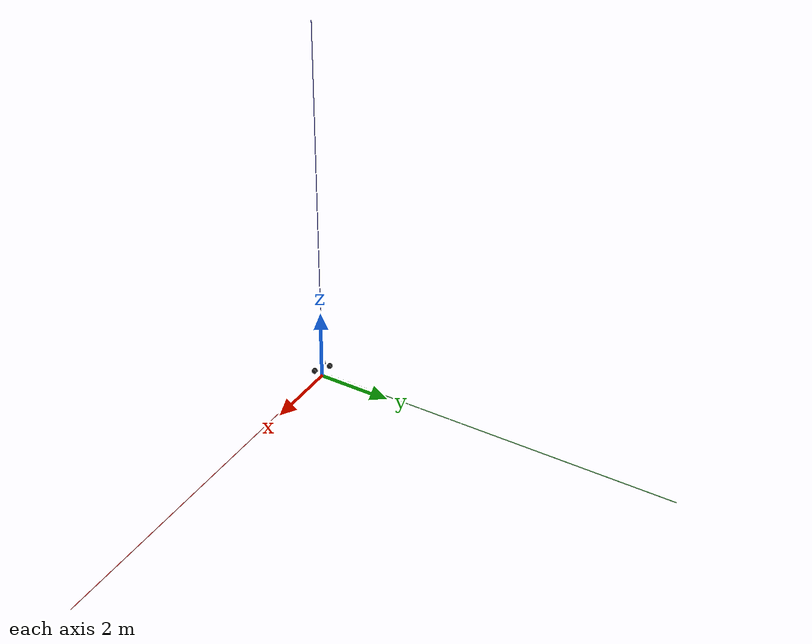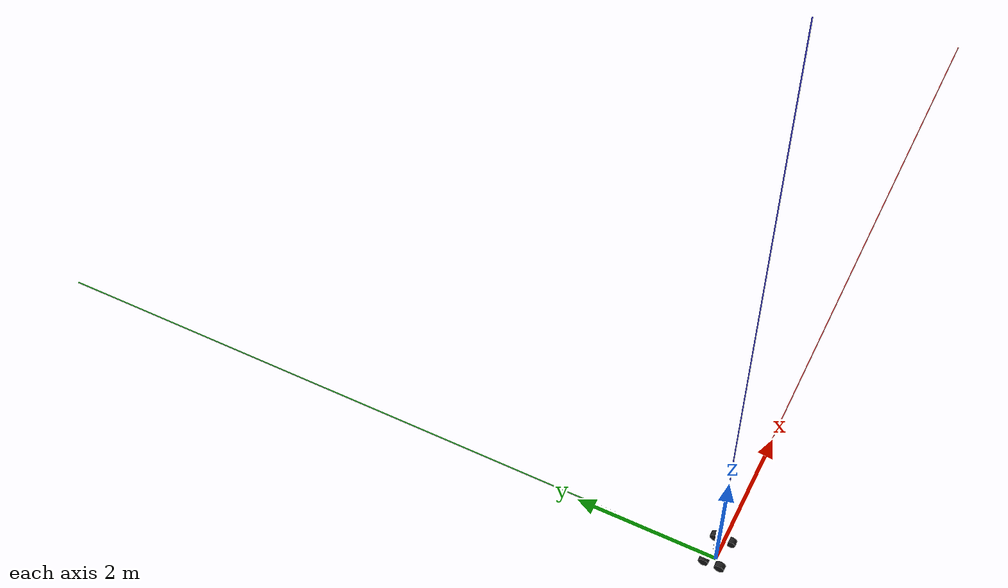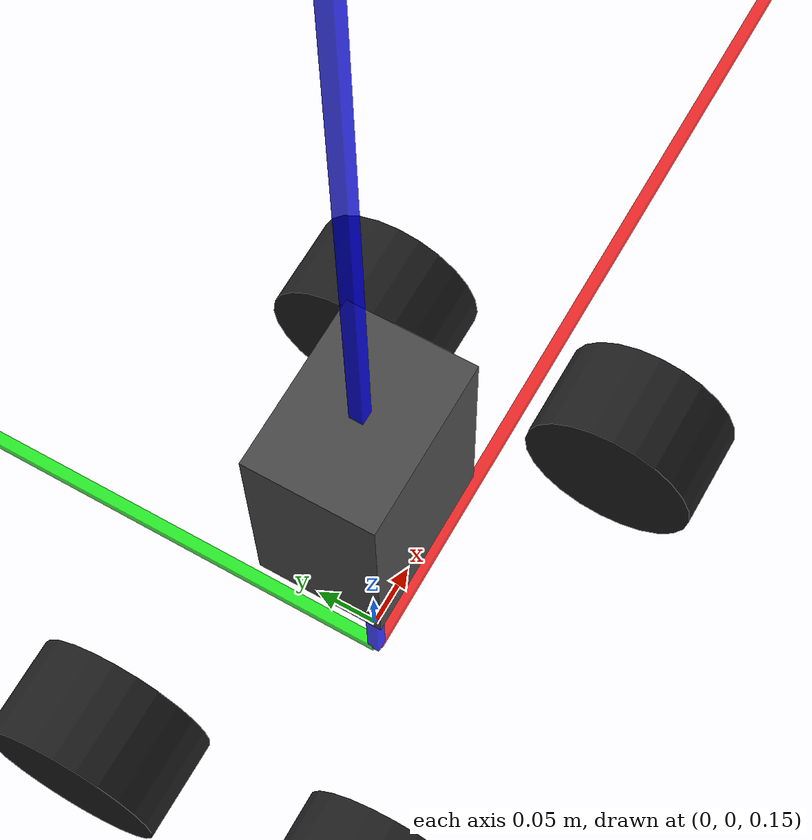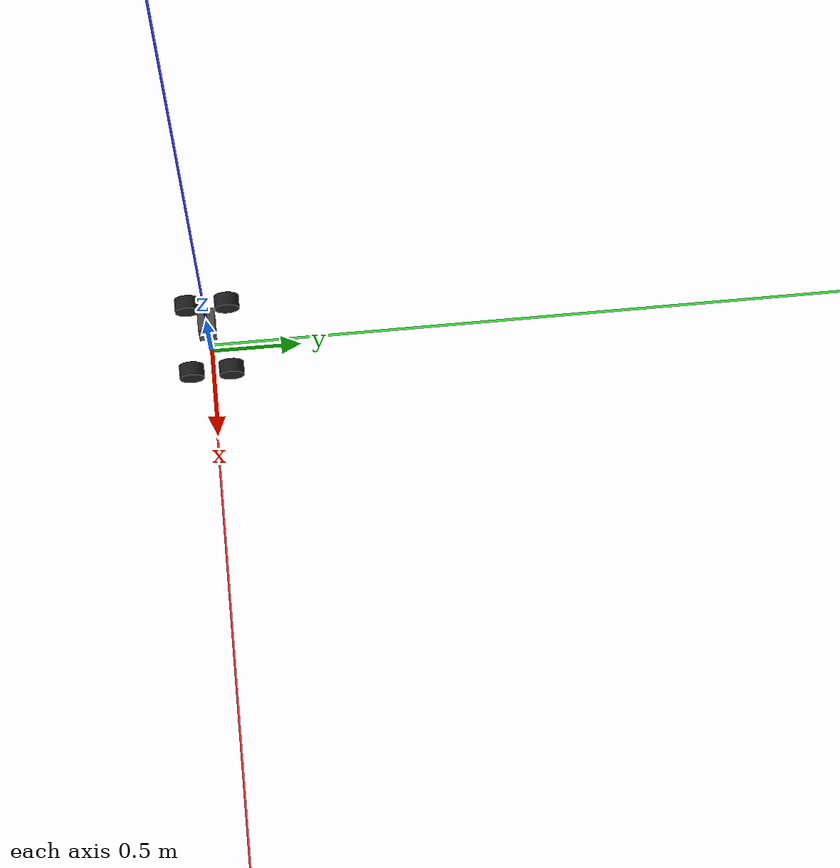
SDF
<sdf version="1.9">
 <world name="iris_runway">
  <physics name="1ms" type="ignore">
   <max_step_size>0.001</max_step_size>
   <real_time_factor>1.0</real_time_factor>
  </physics>
  <plugin filename="gz-sim-physics-system" name="gz::sim::systems::Physics"/>
  <plugin filename="gz-sim-sensors-system" name="gz::sim::systems::Sensors">
   <render_engine>ogre2</render_engine>
  </plugin>
  <plugin filename="gz-sim-user-commands-system" name="gz::sim::systems::UserCommands"/>
  <plugin filename="gz-sim-scene-broadcaster-system" name="gz::sim::systems::SceneBroadcaster"/>
  <plugin filename="gz-sim-imu-system" name="gz::sim::systems::Imu"/>
  <plugin filename="gz-sim-navsat-system" name="gz::sim::systems::NavSat"/>
  <scene><ambient>1.0 1.0 1.0</ambient><background>0.8 0.8 0.8</background></scene>
  <spherical_coordinates>
   <latitude_deg>-35.363262</latitude_deg>
   <longitude_deg>149.165237</longitude_deg>
   <elevation>584</elevation>
   <heading_deg>0</heading_deg>
   <surface_model>EARTH_WGS84</surface_model>
  </spherical_coordinates>
  <light type="directional" name="sun">
   <pose>0 0 10 0 0 0</pose>
   <diffuse>0.8 0.8 0.8 1</diffuse>
   <specular>0.8 0.8 0.8 1</specular>
   <attenuation>
    <range>1000</range>
    <constant>0.9</constant>
    <linear>0.01</linear>
    <quadratic>0.001</quadratic>
   </attenuation>
   <direction>-0.5 0.1 -0.9</direction>
  </light>
  <model name="axes">
   <static>1</static>
   <link name="link">
    <visual name="r">
     <cast_shadows>0</cast_shadows>
     <pose>5 0 0.1 0 0 0</pose>
     <geometry><box><size>10 0.01 0.01</size></box></geometry>
     <material>
      <ambient>1 0 0 0.8</ambient>
      <diffuse>1 0 0 0.8</diffuse>
      <emissive>1 0 0 0.8</emissive>
      <specular>0.5 0.5 0.5 0.8</specular>
     </material>
    </visual>
    <visual name="g">
     <cast_shadows>0</cast_shadows>
     <pose>0 5 0.1 0 0 0</pose>
     <geometry><box><size>0.01 10 0.01</size></box></geometry>
     <material>
      <ambient>0 1 0 0.8</ambient>
      <diffuse>0 1 0 0.8</diffuse>
      <emissive>0 1 0 0.8</emissive>
      <specular>0.5 0.5 0.5 0.8</specular>
     </material>
    </visual>
    <visual name="b">
     <cast_shadows>0</cast_shadows>
     <pose>0 0 5.1 0 0 0</pose>
     <geometry><box><size>0.01 0.01 10</size></box></geometry>
     <material>
      <ambient>0 0 1 0.8</ambient>
      <diffuse>0 0 1 0.8</diffuse>
      <emissive>0 0 1 0.8</emissive>
      <specular>0.5 0.5 0.5 0.8</specular>
     </material>
    </visual>
    <sensor name="navsat_sensor" type="navsat"><always_on>1</always_on><update_rate>1</update_rate></sensor>
   </link>
  </model>
  <include><uri>model://gress_rover</uri><pose degrees="true">0 0 0.195 0 0 90</pose></include>
 </world>
</sdf>

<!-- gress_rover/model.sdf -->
<sdf version="1.9">
  <model name="gress_rover">

    <!--   BASE LINK    -->

    <link name='base_link'>
      <pose>0 0 0 0 0 0</pose>
      <inertial>
        <pose>0 0 0 0 0 0</pose>
        <mass>3.12</mass>
        <inertia>
            <ixx>0.033764</ixx>
            <ixy>0.0</ixy>
            <ixz>0.0</ixz>
            <iyy>0.050325</iyy>
            <iyz>0.0</iyz>
            <izz>0.020275</izz>
        </inertia>
      </inertial>

      <collision name='odom_fixed_joint_lump__base_link_collision'>
        <pose>0 0 0.25 0 -0 0</pose>
        <geometry>
          <box>
            <size>0.093 0.126 0.17</size>
          </box>
        </geometry>
      </collision>

      <visual name='odom_fixed_joint_lump__base_link_visual'>
        <pose>0 0 0.25 0 -0 0</pose>
        <geometry>
          <box>
            <size>0.093 0.126 0.17</size>
          </box>
        </geometry>
        <material>
          <script>
            <name>Gazebo/DarkGrey</name>
            <uri>file://media/materials/scripts/gazebo.material</uri>
          </script>
          <diffuse>1 1 1 1</diffuse>
          <specular>1 1 1 1</specular>
        </material>
      </visual>

      <!--   SENSOR    -->

      <sensor name="imu_sensor" type="imu">
        <pose degrees="true">0 0 0 0 180 0</pose>
        <always_on>1</always_on>
        <update_rate>1000</update_rate>
        <visualize>true</visualize>
      </sensor>

    </link>

      <link name='lf_wheel_link'>
      <pose>0.11 0.195 0.0392 0 -0 0</pose>
      <inertial>
        <pose>0 0 0 1.57079632679 0 0</pose>
        <mass>0.670</mass>
        <inertia>
          <ixx>0.00287</ixx>
          <ixy>0</ixy>
          <ixz>0</ixz>
          <iyy>0.001797</iyy>
          <iyz>0</iyz>
          <izz>0.001797</izz>
        </inertia>
      </inertial>

      <collision name='lf_wheel_link_collision'>
        <pose>0 0 0 1.57079632679 0 0</pose>
        <geometry>
          <cylinder>
            <radius>0.0686</radius>
            <length>0.0762</length>
          </cylinder>
          </geometry>
        <max_contacts>1</max_contacts>
        <surface>
          <friction>
            <torsional>
              <coefficient>1</coefficient>
              <use_patch_radius>1</use_patch_radius>
              <surface_radius>0.0686</surface_radius>
            </torsional>
            <ode>
              <mu>0.7</mu>
              <mu2>0.7</mu2>
              <fdir1>1 0 0</fdir1>
              <fdir2>0 1 0</fdir2>
            </ode>
          </friction>
          <bounce>
            <restitution_coefficient>0</restitution_coefficient>
            <threshold>1e6</threshold>
          </bounce>
          <contact>
            <ode>
              <min_depth>0.001</min_depth>
              <max_vel>0.0</max_vel>
              <kp>1.0e6</kp>
              <kd>100.0</kd>
            </ode>
          </contact>
        </surface>
      </collision>

      <visual name='lf_wheel_link_visual'>
        <pose>0 0 0 1.57079632679 0 0</pose>
        <geometry>
          <cylinder>
            <radius>0.0686</radius>
            <length>0.0762</length>
          </cylinder>
        </geometry>
        <material>
          <script>
            <name>Gazebo/Black</name>
            <uri>file://media/materials/scripts/gazebo.material</uri>
          </script>
          <diffuse>0.5 0.5 0.5 1</diffuse>
        <specular>0.5 0.5 0.5 1</specular>
        </material>
      </visual>

    </link>

    <joint name='motor_0' type='revolute'>
      <child>lf_wheel_link</child>
      <parent>base_link</parent>
      <axis>
        <xyz>0 1 0</xyz>
        <limit>
          <lower>-1e+16</lower>
          <upper>1e+16</upper>
          <effort>5</effort>
          <velocity>10000</velocity>
        </limit>
        <dynamics>
          <damping>0.01</damping>
        </dynamics>
      </axis>
    </joint>

    <link name='lb_wheel_link'>
      <pose>-0.11 0.195 0.0392 0 -0 0</pose>

      <inertial>
        <pose>0 0 0 1.57079632679 0 0</pose>
        <mass>0.670</mass>
        <inertia>
          <ixx>0.00287</ixx>
          <ixy>0</ixy>
          <ixz>0</ixz>
          <iyy>0.001797</iyy>
          <iyz>0</iyz>
          <izz>0.001797</izz>
        </inertia>
      </inertial>

      <collision name='lb_wheel_link_collision'>
        <pose>0 0 0 1.57079632679 0 0</pose>
        <geometry>
          <cylinder>
            <radius>0.0686</radius>
            <length>0.0762</length>
          </cylinder>
        </geometry>
        <max_contacts>1</max_contacts>
        <surface>
          <friction>
            <torsional>
              <coefficient>1</coefficient>
              <use_patch_radius>1</use_patch_radius>
              <surface_radius>0.0686</surface_radius>
            </torsional>
            <ode>
              <mu>0.7</mu>
              <mu2>0.7</mu2>
              <fdir1>1 0 0</fdir1>
              <fdir2>0 1 0</fdir2>
            </ode>
          </friction>
          <bounce>
            <restitution_coefficient>0</restitution_coefficient>
            <threshold>1e6</threshold>
          </bounce>
          <contact>
            <ode>
              <min_depth>0.001</min_depth>
              <max_vel>0.0</max_vel>
              <kp>1.0e6</kp>
              <kd>100.0</kd>
            </ode>
          </contact>
        </surface>
      </collision>

      <visual name='lb_wheel_link_visual'>
      <pose>0 0 0 1.57079632679 0 0</pose>
      <geometry>
        <cylinder>
          <radius>0.0686</radius>
          <length>0.0762</length>
        </cylinder>
    </geometry>
      <material>
        <script>
          <name>Gazebo/Black</name>
          <uri>file://media/materials/scripts/gazebo.material</uri>
        </script>
        <diffuse>0.5 0.5 0.5 1</diffuse>
        <specular>0.5 0.5 0.5 1</specular>
      </material>
      </visual>

    </link>

    <joint name='motor_1' type='revolute'>
      <child>lb_wheel_link</child>
      <parent>base_link</parent>
      <axis>
        <xyz>0 1 0</xyz>
        <limit>
          <lower>-1e+16</lower>
          <upper>1e+16</upper>
          <effort>5</effort>
          <velocity>10000</velocity>
        </limit>
        <dynamics>
          <damping>0.01</damping>
        </dynamics>
      </axis>
    </joint>

    <link name='rf_wheel_link'>
      <pose>0.11 -0.195 0.0392 0 -0 0</pose>
      <inertial>
        <pose>0 0 0 1.57079632679 0 0</pose>
        <mass>0.670</mass>
        <inertia>
          <ixx>0.00287</ixx>
          <ixy>0</ixy>
          <ixz>0</ixz>
          <iyy>0.001797</iyy>
          <iyz>0</iyz>
          <izz>0.001797</izz>
        </inertia>
      </inertial>

      <collision name='rf_wheel_link_collision'>
        <pose>0 0 0 1.57079632679 0 0</pose>
        <geometry>
          <cylinder>
            <radius>0.0686</radius>
            <length>0.0762</length>
          </cylinder>
        </geometry>
        <max_contacts>1</max_contacts>
        <surface>
          <friction>
            <torsional>
              <coefficient>1</coefficient>
              <use_patch_radius>1</use_patch_radius>
              <surface_radius>0.0686</surface_radius>
            </torsional>
            <ode>
              <mu>0.7</mu>
              <mu2>0.7</mu2>
              <fdir1>1 0 0</fdir1>
              <fdir2>0 1 0</fdir2>
            </ode>
          </friction>
          <bounce>
            <restitution_coefficient>0</restitution_coefficient>
            <threshold>1e6</threshold>
          </bounce>
          <contact>
            <ode>
              <min_depth>0.001</min_depth>
              <max_vel>0.0</max_vel>
              <kp>1.0e6</kp>
              <kd>100.0</kd>
            </ode>
          </contact>
        </surface>
      </collision>

      <visual name='rf_wheel_link_visual'>
        <pose>0 0 0 1.57079632679 0 0</pose>
        <geometry>
          <cylinder>
            <radius>0.0686</radius>
            <length>0.0762</length>
          </cylinder>
          </geometry>
      <material>
          <script>
            <name>Gazebo/Black</name>
            <uri>file://media/materials/scripts/gazebo.material</uri>
          </script>
          <diffuse>0.5 0.5 0.5 1</diffuse>
        <specular>0.5 0.5 0.5 1</specular>
        </material>
      </visual>

    </link>

    <joint name='motor_2' type='revolute'>
      <child>rf_wheel_link</child>
      <parent>base_link</parent>
      <axis>
        <xyz>0 1 0</xyz>
        <limit>
          <lower>-1e+16</lower>
          <upper>1e+16</upper>
          <effort>5</effort>
          <velocity>10000</velocity>
        </limit>
        <dynamics>
          <damping>0.01</damping>
        </dynamics>
      </axis>
    </joint>

    <link name='rb_wheel_link'>
      <pose>-0.11 -0.195 0.0392 0 -0 0</pose>
      <inertial>
        <pose>0 0 0 1.57079632679 0 0</pose>
        <mass>0.670</mass>
        <inertia>
          <ixx>0.00287</ixx>
          <ixy>0</ixy>
          <ixz>0</ixz>
          <iyy>0.001797</iyy>
          <iyz>0</iyz>
          <izz>0.001797</izz>
        </inertia>
      </inertial>

      <collision name='rb_wheel_link_collision'>
        <pose>0 0 0 1.57079632679 0 0</pose>
        <geometry>
          <cylinder>
            <radius>0.0686</radius>
            <length>0.0762</length>
          </cylinder>
        </geometry>
        <max_contacts>1</max_contacts>
        <surface>
          <friction>
            <torsional>
              <coefficient>1</coefficient>
              <use_patch_radius>1</use_patch_radius>
              <surface_radius>0.0686</surface_radius>
            </torsional>
            <ode>
              <mu>0.7</mu>
              <mu2>0.7</mu2>
              <fdir1>1 0 0</fdir1>
              <fdir2>0 1 0</fdir2>
            </ode>
          </friction>
          <bounce>
            <restitution_coefficient>0</restitution_coefficient>
            <threshold>1e6</threshold>
          </bounce>
          <contact>
          <ode>
            <min_depth>0.001</min_depth>
            <kp>1e8</kp>
          </ode>
          </contact>
        </surface>
      </collision>

      <visual name='rb_wheel_link_visual'>
        <pose>0 0 0 1.57079632679 0 0</pose>
        <geometry>
          <cylinder>
            <radius>0.0686</radius>
            <length>0.0762</length>
          </cylinder>
        </geometry>
        <material>
          <script>
            <name>Gazebo/Black</name>
            <uri>file://media/materials/scripts/gazebo.material</uri>
          </script>
          <diffuse>0.5 0.5 0.5 1</diffuse>
        <specular>0.5 0.5 0.5 1</specular>
        </material>
      </visual>

    </link>

    <joint name='motor_3' type='revolute'>
      <child>rb_wheel_link</child>
      <parent>base_link</parent>
      <axis>
        <xyz>0 1 0</xyz>
        <limit>
          <lower>-1e+16</lower>
          <upper>1e+16</upper>
          <effort>5</effort>
          <velocity>10000</velocity>
        </limit>
        <dynamics>
          <damping>0.01</damping>
        </dynamics>
      </axis>
    </joint>

   <!-- plugins -->

    <plugin name="ArduPilotPlugin"
        filename="libArduPilotPlugin.so">
        <fdm_addr>127.0.0.1</fdm_addr>
        <fdm_port_in>9002</fdm_port_in>
        <connectionTimeoutMaxCount>5</connectionTimeoutMaxCount>
        <lock_step>1</lock_step>
        <gazeboXYZToNED degrees="true">0 0 0 0 3.14159 0</gazeboXYZToNED>
        <modelXYZToAirplaneXForwardZDown degrees="true">0 0 0 0 0 0</modelXYZToAirplaneXForwardZDown>
        <imuName>base_link::imu_sensor</imuName>

        <control channel="0">
          <jointName>motor_0</jointName>
          <useForce>1</useForce>
          <multiplier>46.3</multiplier>
          <offset>-0.5</offset>
          <servo_min>1000</servo_min>
          <servo_max>2000</servo_max>
          <type>VELOCITY</type>
          <p_gain>0.2</p_gain>
          <i_gain>0.06</i_gain>
          <d_gain>0.0001</d_gain>
          <i_max>1</i_max>
          <i_min>-1</i_min>
          <cmd_max>-1.0</cmd_max>
          <cmd_min>0.0</cmd_min>
        </control>

        <control channel="0">
          <jointName>motor_1</jointName>
          <useForce>1</useForce>
          <multiplier>46.3</multiplier>
          <offset>-0.5</offset>
          <servo_min>1000</servo_min>
          <servo_max>2000</servo_max>
          <type>VELOCITY</type>
          <p_gain>0.2</p_gain>
          <i_gain>0.06</i_gain>
          <d_gain>0.0001</d_gain>
          <i_max>1</i_max>
          <i_min>-1</i_min>
          <cmd_max>-1.0</cmd_max>
          <cmd_min>0.0</cmd_min>
        </control>

        <control channel="2">
          <jointName>motor_2</jointName>
          <useForce>1</useForce>
          <multiplier>46.3</multiplier>
          <offset>-0.5</offset>
          <servo_min>1000</servo_min>
          <servo_max>2000</servo_max>
          <type>VELOCITY</type>
          <p_gain>0.2</p_gain>
          <i_gain>0.06</i_gain>
          <d_gain>0.0001</d_gain>
          <i_max>1</i_max>
          <i_min>-1</i_min>
          <cmd_max>-1.0</cmd_max>
          <cmd_min>0.0</cmd_min>
        </control>

        <control channel="2">
          <jointName>motor_3</jointName>
          <useForce>1</useForce>
          <multiplier>46.3</multiplier>
          <offset>-0.5</offset>
          <servo_min>1000</servo_min>
          <servo_max>2000</servo_max>
          <type>VELOCITY</type>
          <p_gain>0.2</p_gain>
          <i_gain>0.06</i_gain>
          <d_gain>0.0001</d_gain>
          <i_max>1</i_max>
          <i_min>-1</i_min>
          <cmd_max>-1.0</cmd_max>
          <cmd_min>0.0</cmd_min>
        </control>

    </plugin>

  </model>
</sdf>
